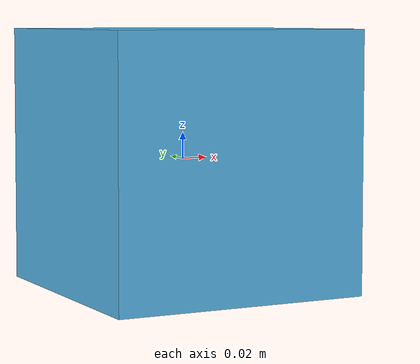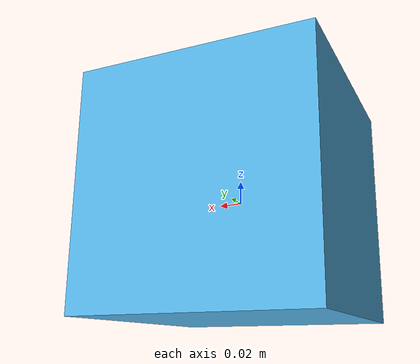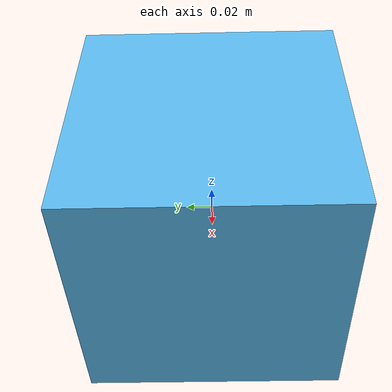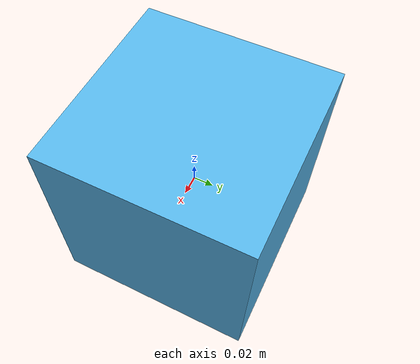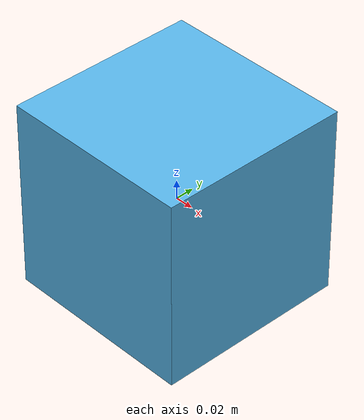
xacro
<?xml version="1.0"?>
<robot name="joint_motion_probe" xmlns:xacro="http://www.ros.org/wiki/xacro">
  <xacro:arg name="controllers_file" default=""/>

  <link name="world"/>
  <link name="base_link">
    <visual>
      <geometry><box size="0.2 0.2 0.2"/></geometry>
    </visual>
    <collision>
      <geometry><box size="0.2 0.2 0.2"/></geometry>
    </collision>
    <inertial>
      <mass value="1.0"/>
      <inertia ixx="0.01" ixy="0" ixz="0" iyy="0.01" iyz="0" izz="0.01"/>
    </inertial>
  </link>
  <link name="slider_link">
    <visual>
      <geometry><box size="0.1 0.1 0.1"/></geometry>
    </visual>
    <collision>
      <geometry><box size="0.1 0.1 0.1"/></geometry>
    </collision>
    <inertial>
      <mass value="0.25"/>
      <inertia ixx="0.001" ixy="0" ixz="0" iyy="0.001" iyz="0" izz="0.001"/>
    </inertial>
  </link>

  <joint name="world_joint" type="fixed">
    <parent link="world"/>
    <child link="base_link"/>
  </joint>
  <joint name="slider_joint" type="prismatic">
    <parent link="base_link"/>
    <child link="slider_link"/>
    <axis xyz="1 0 0"/>
    <limit lower="-0.5" upper="0.5" effort="20" velocity="1"/>
  </joint>

  <ros2_control name="GazeboSimSystem" type="system">
    <hardware>
      <plugin>gz_ros2_control/GazeboSimSystem</plugin>
    </hardware>
    <joint name="slider_joint">
      <command_interface name="position">
        <param name="min">-0.5</param>
        <param name="max">0.5</param>
      </command_interface>
      <state_interface name="position"/>
      <state_interface name="velocity"/>
    </joint>
  </ros2_control>

  <gazebo>
    <plugin filename="libgz_ros2_control-system.so" name="gz_ros2_control::GazeboSimROS2ControlPlugin">
      <parameters>$(arg controllers_file)</parameters>
    </plugin>
  </gazebo>
</robot>
